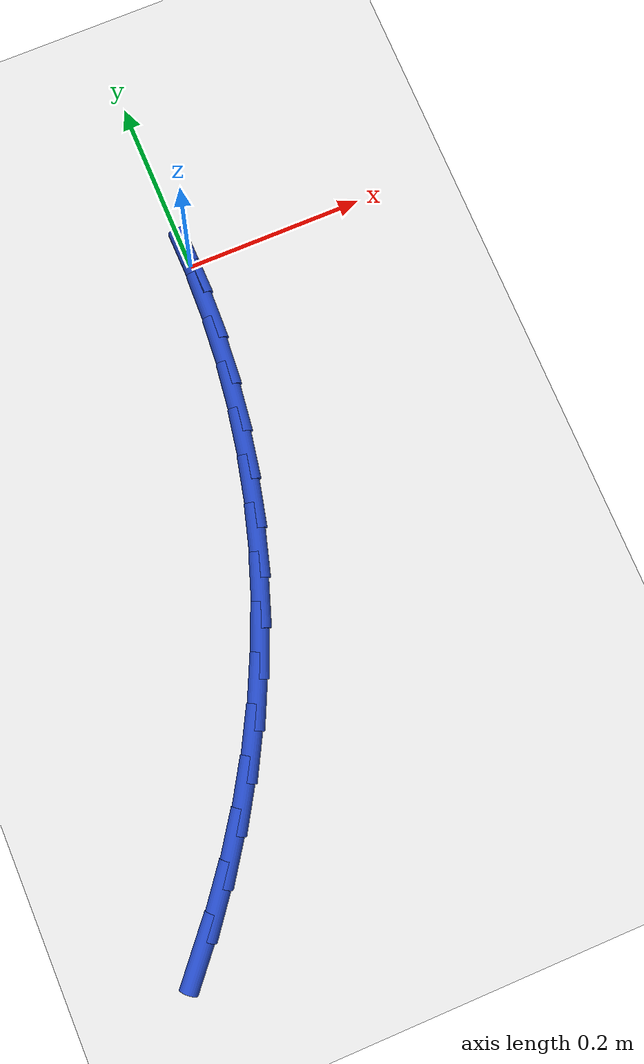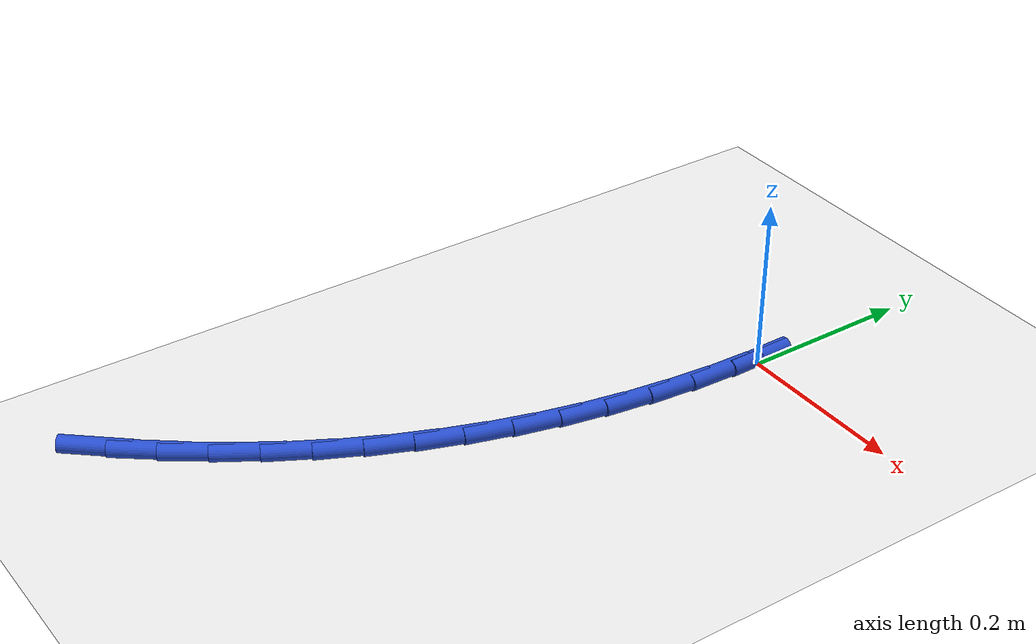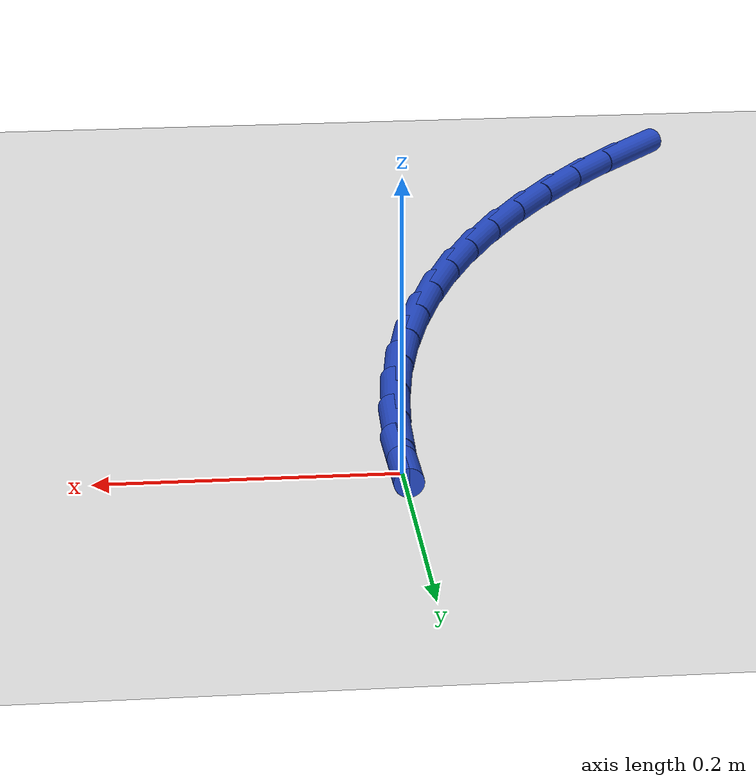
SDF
<sdf version="1.6">
 <world name="default">
  <model name="ground_plane">
   <static>1</static>
   <link name="link">
    <collision name="collision">
     <geometry><plane><normal>0 0 1</normal><size>100 100</size></plane></geometry>
     <surface><friction><ode><mu>100</mu><mu2>50</mu2></ode></friction></surface>
    </collision>
    <visual name="visual">
     <cast_shadows>0</cast_shadows>
     <geometry><plane><normal>0 0 1</normal><size>100 100</size></plane></geometry>
     <material>
      <script><uri>file://media/materials/scripts/gazebo.material</uri><name>Gazebo/WhiteGlow</name></script>
     </material>
    </visual>
   </link>
  </model>
  <model name="line">
   <link name="link_0">
    <pose>1.0408340855860843e-17 2.7755575615628914e-17 0.01 0 1.57 -1.5594421020944538</pose>
    <collision name="collision">
     <geometry><cylinder><radius>0.01</radius><length>0.08</length></cylinder></geometry>
    </collision>
    <visual name="visual">
     <material>
      <script><name>Gazebo/Blue</name><uri>file://media/materials/scripts/gazebo.material</uri></script>
     </material>
     <geometry><cylinder><radius>0.01</radius><length>0.08</length></cylinder></geometry>
    </visual>
   </link>
   <link name="link_116">
    <pose>-0.2607302678140945 -0.6735365041608037 0.01 0 1.57 0.86034192669298</pose>
    <collision name="collision">
     <geometry><cylinder><radius>0.01</radius><length>0.08</length></cylinder></geometry>
    </collision>
    <visual name="visual">
     <material>
      <script><name>Gazebo/Blue</name><uri>file://media/materials/scripts/gazebo.material</uri></script>
     </material>
     <geometry><cylinder><radius>0.01</radius><length>0.08</length></cylinder></geometry>
    </visual>
   </link>
   <link name="link_117">
    <pose>-0.22616157456867073 -0.6333552574069391 0.01 0 1.57 0.9123268054737385</pose>
    <collision name="collision">
     <geometry><cylinder><radius>0.01</radius><length>0.08</length></cylinder></geometry>
    </collision>
    <visual name="visual">
     <material>
      <script><name>Gazebo/Blue</name><uri>file://media/materials/scripts/gazebo.material</uri></script>
     </material>
     <geometry><cylinder><radius>0.01</radius><length>0.08</length></cylinder></geometry>
    </visual>
   </link>
   <link name="link_118">
    <pose>-0.19368671930015025 -0.5913793956457054 0.01 0 1.57 0.9643385726624619</pose>
    <collision name="collision">
     <geometry><cylinder><radius>0.01</radius><length>0.08</length></cylinder></geometry>
    </collision>
    <visual name="visual">
     <material>
      <script><name>Gazebo/Blue</name><uri>file://media/materials/scripts/gazebo.material</uri></script>
     </material>
     <geometry><cylinder><radius>0.01</radius><length>0.08</length></cylinder></geometry>
    </visual>
   </link>
   <link name="link_119">
    <pose>-0.16345166668227867 -0.5477916374945778 0.01 0 1.57 1.016783443491755</pose>
    <collision name="collision">
     <geometry><cylinder><radius>0.01</radius><length>0.08</length></cylinder></geometry>
    </collision>
    <visual name="visual">
     <material>
      <script><name>Gazebo/Blue</name><uri>file://media/materials/scripts/gazebo.material</uri></script>
     </material>
     <geometry><cylinder><radius>0.01</radius><length>0.08</length></cylinder></geometry>
    </visual>
   </link>
   <link name="link_120">
    <pose>-0.1356023813888 -0.5027747015710292 0.01 0 1.57 1.0700669029359922</pose>
    <collision name="collision">
     <geometry><cylinder><radius>0.01</radius><length>0.08</length></cylinder></geometry>
    </collision>
    <visual name="visual">
     <material>
      <script><name>Gazebo/Blue</name><uri>file://media/materials/scripts/gazebo.material</uri></script>
     </material>
     <geometry><cylinder><radius>0.01</radius><length>0.08</length></cylinder></geometry>
    </visual>
   </link>
   <link name="link_121">
    <pose>-0.110284684531597 -0.45651120676210616 0.01 0 1.57 1.1241108213621296</pose>
    <collision name="collision">
     <geometry><cylinder><radius>0.01</radius><length>0.08</length></cylinder></geometry>
    </collision>
    <visual name="visual">
     <material>
      <script><name>Gazebo/Blue</name><uri>file://media/materials/scripts/gazebo.material</uri></script>
     </material>
     <geometry><cylinder><radius>0.01</radius><length>0.08</length></cylinder></geometry>
    </visual>
   </link>
   <link name="link_122">
    <pose>-0.08760197280396988 -0.40915430030175387 0.01 0 1.57 1.177900004469173</pose>
    <collision name="collision">
     <geometry><cylinder><radius>0.01</radius><length>0.08</length></cylinder></geometry>
    </collision>
    <visual name="visual">
     <material>
      <script><name>Gazebo/Blue</name><uri>file://media/materials/scripts/gazebo.material</uri></script>
     </material>
     <geometry><cylinder><radius>0.01</radius><length>0.08</length></cylinder></geometry>
    </visual>
   </link>
   <link name="link_123">
    <pose>-0.06755628675428053 -0.3607867187207635 0.01 0 1.57 1.2311541487996203</pose>
    <collision name="collision">
     <geometry><cylinder><radius>0.01</radius><length>0.08</length></cylinder></geometry>
    </collision>
    <visual name="visual">
     <material>
      <script><name>Gazebo/Blue</name><uri>file://media/materials/scripts/gazebo.material</uri></script>
     </material>
     <geometry><cylinder><radius>0.01</radius><length>0.08</length></cylinder></geometry>
    </visual>
   </link>
   <link name="link_124">
    <pose>-0.05013485015171139 -0.3114809055396604 0.01 0 1.57 1.283761709914158</pose>
    <collision name="collision">
     <geometry><cylinder><radius>0.01</radius><length>0.08</length></cylinder></geometry>
    </collision>
    <visual name="visual">
     <material>
      <script><name>Gazebo/Blue</name><uri>file://media/materials/scripts/gazebo.material</uri></script>
     </material>
     <geometry><cylinder><radius>0.01</radius><length>0.08</length></cylinder></geometry>
    </visual>
   </link>
   <link name="link_125">
    <pose>-0.03532488676544401 -0.2613093042789677 0.01 0 1.57 1.335628381977439</pose>
    <collision name="collision">
     <geometry><cylinder><radius>0.01</radius><length>0.08</length></cylinder></geometry>
    </collision>
    <visual name="visual">
     <material>
      <script><name>Gazebo/Blue</name><uri>file://media/materials/scripts/gazebo.material</uri></script>
     </material>
     <geometry><cylinder><radius>0.01</radius><length>0.08</length></cylinder></geometry>
    </visual>
   </link>
   <link name="link_126">
    <pose>-0.023113620364660158 -0.21034435845920885 0.01 0 1.57 1.3866775760925767</pose>
    <collision name="collision">
     <geometry><cylinder><radius>0.01</radius><length>0.08</length></cylinder></geometry>
    </collision>
    <visual name="visual">
     <material>
      <script><name>Gazebo/Blue</name><uri>file://media/materials/scripts/gazebo.material</uri></script>
     </material>
     <geometry><cylinder><radius>0.01</radius><length>0.08</length></cylinder></geometry>
    </visual>
   </link>
   <link name="link_127">
    <pose>-0.013488274718542049 -0.15865851160090905 0.01 0 1.57 1.4368502495008098</pose>
    <collision name="collision">
     <geometry><cylinder><radius>0.01</radius><length>0.08</length></cylinder></geometry>
    </collision>
    <visual name="visual">
     <material>
      <script><name>Gazebo/Blue</name><uri>file://media/materials/scripts/gazebo.material</uri></script>
     </material>
     <geometry><cylinder><radius>0.01</radius><length>0.08</length></cylinder></geometry>
    </visual>
   </link>
   <link name="link_128">
    <pose>-0.0064360735962714025 -0.10632420722459168 0.01 0 1.57 1.4861041870160308</pose>
    <collision name="collision">
     <geometry><cylinder><radius>0.01</radius><length>0.08</length></cylinder></geometry>
    </collision>
    <visual name="visual">
     <material>
      <script><name>Gazebo/Blue</name><uri>file://media/materials/scripts/gazebo.material</uri></script>
     </material>
     <geometry><cylinder><radius>0.01</radius><length>0.08</length></cylinder></geometry>
    </visual>
   </link>
   <link name="link_129">
    <pose>-0.001944240767030073 -0.053413888850780585 0.01 0 1.57 1.5344128536520205</pose>
    <collision name="collision">
     <geometry><cylinder><radius>0.01</radius><length>0.08</length></cylinder></geometry>
    </collision>
    <visual name="visual">
     <material>
      <script><name>Gazebo/Blue</name><uri>file://media/materials/scripts/gazebo.material</uri></script>
     </material>
     <geometry><cylinder><radius>0.01</radius><length>0.08</length></cylinder></geometry>
    </visual>
   </link>
   <link name="link_130">
    <pose>2.7755575615628914e-17 1.8041124150158794e-16 0.01 0 1.57 -1.5598287121418126</pose>
    <collision name="collision">
     <geometry><cylinder><radius>0.01</radius><length>0.08</length></cylinder></geometry>
    </collision>
    <visual name="visual">
     <material>
      <script><name>Gazebo/Blue</name><uri>file://media/materials/scripts/gazebo.material</uri></script>
     </material>
     <geometry><cylinder><radius>0.01</radius><length>0.08</length></cylinder></geometry>
    </visual>
   </link>
  </model>
 </world>
</sdf>
